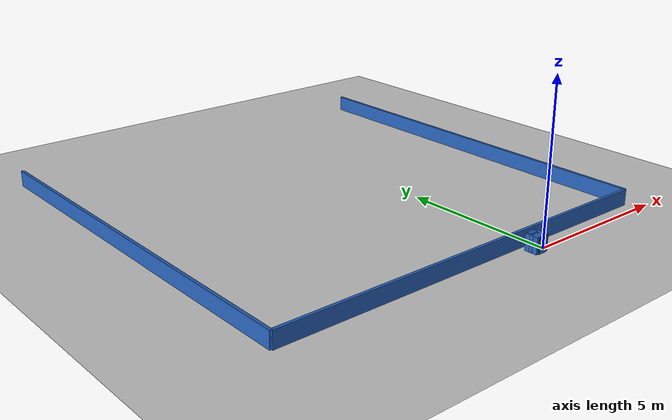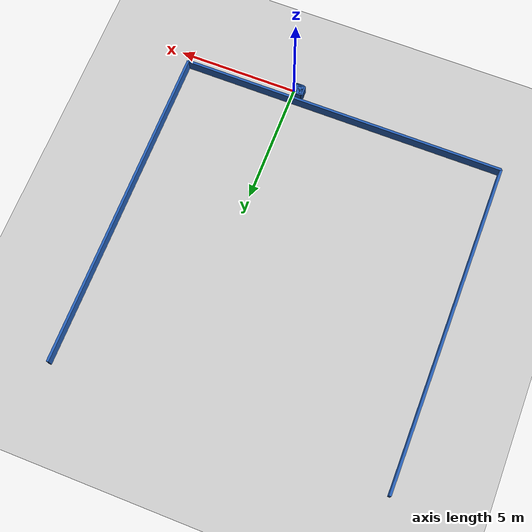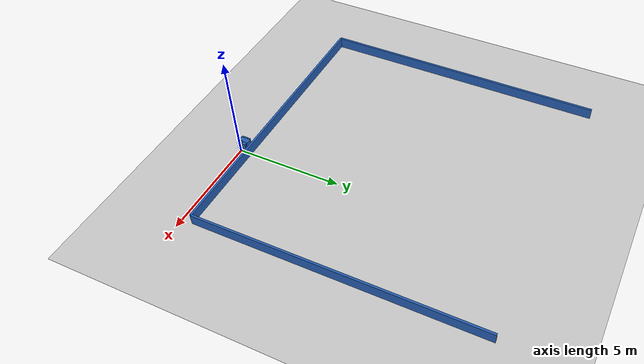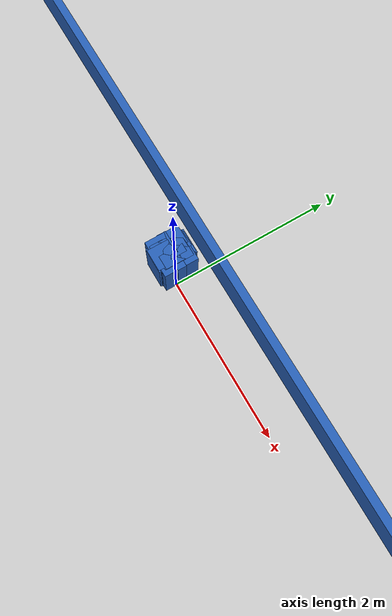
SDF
<?xml version="1.0" ?>
    <sdf version="1.5">
      <world name="default">
        <!-- A global light source -->
        <include>
          <uri>model://sun</uri>
        </include>
        <!-- A ground plane -->
        <include>
          <uri>model://ground_plane</uri>
        </include>

    <model name='libopen_space_final_T2B_119_99'>
      <static>1</static>
      <pose frame=''>-0.225000 0.075000 0.000000 0.000000 0.000000 0.000000</pose>
      <link name='link'>
        <inertial>
          <mass>1</mass>
          <inertia>
            <ixx>0.145833</ixx>
            <ixy>0</ixy>
            <ixz>0</ixz>
            <iyy>0.145833</iyy>
            <iyz>0</iyz>
            <izz>0.125</izz>
          </inertia>
        </inertial>
        <collision name='collision'>
          <geometry>
            <box>
              <size>0.33 0.44 1</size>
            </box>
          </geometry>
          <max_contacts>10</max_contacts>
          <surface>
            <contact>
              <ode/>
            </contact>
            <bounce/>
            <friction>
              <torsional>
                <ode/>
              </torsional>
              <ode/>
            </friction>
          </surface>
        </collision>
        <visual name='visual'>
          <geometry>
            <box>
              <size>0.33 0.44 1</size>
            </box>
          </geometry>
	    <material>
              <ambient>0.152000 0.379000 0.720000 1</ambient>
	      <diffuse>0.152000 0.379000 0.720000 1</diffuse>
          </material>
          <material>
            <script>
              <name>Gazebo/Grey</name>
              <uri>file://media/materials/scripts/gazebo.material</uri>
            </script>
          </material>
        </visual>
        <self_collide>0</self_collide>
        <kinematic>0</kinematic>
        <gravity>1</gravity>
      </link>
      <plugin name='libopen_space_final_T2B_119_99' filename='libopen_space_final_T2B_119_99.so'/>
    </model>

    <model name='libopen_space_final_T2B_90_76'>
      <static>1</static>
      <pose frame=''>-0.225000 0.075000 0.000000 0.000000 0.000000 0.000000</pose>
      <link name='link'>
        <inertial>
          <mass>1</mass>
          <inertia>
            <ixx>0.145833</ixx>
            <ixy>0</ixy>
            <ixz>0</ixz>
            <iyy>0.145833</iyy>
            <iyz>0</iyz>
            <izz>0.125</izz>
          </inertia>
        </inertial>
        <collision name='collision'>
          <geometry>
            <box>
              <size>0.46 0.42 1</size>
            </box>
          </geometry>
          <max_contacts>10</max_contacts>
          <surface>
            <contact>
              <ode/>
            </contact>
            <bounce/>
            <friction>
              <torsional>
                <ode/>
              </torsional>
              <ode/>
            </friction>
          </surface>
        </collision>
        <visual name='visual'>
          <geometry>
            <box>
              <size>0.46 0.42 1</size>
            </box>
          </geometry>
	    <material>
              <ambient>0.152000 0.379000 0.720000 1</ambient>
	      <diffuse>0.152000 0.379000 0.720000 1</diffuse>
          </material>
          <material>
            <script>
              <name>Gazebo/Grey</name>
              <uri>file://media/materials/scripts/gazebo.material</uri>
            </script>
          </material>
        </visual>
        <self_collide>0</self_collide>
        <kinematic>0</kinematic>
        <gravity>1</gravity>
      </link>
      <plugin name='libopen_space_final_T2B_90_76' filename='libopen_space_final_T2B_90_76.so'/>
    </model>

    <model name='libopen_space_final_T2B_83_66'>
      <static>1</static>
      <pose frame=''>-0.225000 0.075000 0.000000 0.000000 0.000000 0.000000</pose>
      <link name='link'>
        <inertial>
          <mass>1</mass>
          <inertia>
            <ixx>0.145833</ixx>
            <ixy>0</ixy>
            <ixz>0</ixz>
            <iyy>0.145833</iyy>
            <iyz>0</iyz>
            <izz>0.125</izz>
          </inertia>
        </inertial>
        <collision name='collision'>
          <geometry>
            <box>
              <size>0.32 0.37 1</size>
            </box>
          </geometry>
          <max_contacts>10</max_contacts>
          <surface>
            <contact>
              <ode/>
            </contact>
            <bounce/>
            <friction>
              <torsional>
                <ode/>
              </torsional>
              <ode/>
            </friction>
          </surface>
        </collision>
        <visual name='visual'>
          <geometry>
            <box>
              <size>0.32 0.37 1</size>
            </box>
          </geometry>
	    <material>
              <ambient>0.152000 0.379000 0.720000 1</ambient>
	      <diffuse>0.152000 0.379000 0.720000 1</diffuse>
          </material>
          <material>
            <script>
              <name>Gazebo/Grey</name>
              <uri>file://media/materials/scripts/gazebo.material</uri>
            </script>
          </material>
        </visual>
        <self_collide>0</self_collide>
        <kinematic>0</kinematic>
        <gravity>1</gravity>
      </link>
      <plugin name='libopen_space_final_T2B_83_66' filename='libopen_space_final_T2B_83_66.so'/>
    </model>

    <model name='libopen_space_final_T2B_73_39'>
      <static>1</static>
      <pose frame=''>-0.225000 0.075000 0.000000 0.000000 0.000000 0.000000</pose>
      <link name='link'>
        <inertial>
          <mass>1</mass>
          <inertia>
            <ixx>0.145833</ixx>
            <ixy>0</ixy>
            <ixz>0</ixz>
            <iyy>0.145833</iyy>
            <iyz>0</iyz>
            <izz>0.125</izz>
          </inertia>
        </inertial>
        <collision name='collision'>
          <geometry>
            <box>
              <size>0.33 0.38 1</size>
            </box>
          </geometry>
          <max_contacts>10</max_contacts>
          <surface>
            <contact>
              <ode/>
            </contact>
            <bounce/>
            <friction>
              <torsional>
                <ode/>
              </torsional>
              <ode/>
            </friction>
          </surface>
        </collision>
        <visual name='visual'>
          <geometry>
            <box>
              <size>0.33 0.38 1</size>
            </box>
          </geometry>
	    <material>
              <ambient>0.152000 0.379000 0.720000 1</ambient>
	      <diffuse>0.152000 0.379000 0.720000 1</diffuse>
          </material>
          <material>
            <script>
              <name>Gazebo/Grey</name>
              <uri>file://media/materials/scripts/gazebo.material</uri>
            </script>
          </material>
        </visual>
        <self_collide>0</self_collide>
        <kinematic>0</kinematic>
        <gravity>1</gravity>
      </link>
      <plugin name='libopen_space_final_T2B_73_39' filename='libopen_space_final_T2B_73_39.so'/>
    </model>

    <model name='libopen_space_final_T2B_87_56'>
      <static>1</static>
      <pose frame=''>-0.225000 0.075000 0.000000 0.000000 0.000000 0.000000</pose>
      <link name='link'>
        <inertial>
          <mass>1</mass>
          <inertia>
            <ixx>0.145833</ixx>
            <ixy>0</ixy>
            <ixz>0</ixz>
            <iyy>0.145833</iyy>
            <iyz>0</iyz>
            <izz>0.125</izz>
          </inertia>
        </inertial>
        <collision name='collision'>
          <geometry>
            <box>
              <size>0.11 0.45 1</size>
            </box>
          </geometry>
          <max_contacts>10</max_contacts>
          <surface>
            <contact>
              <ode/>
            </contact>
            <bounce/>
            <friction>
              <torsional>
                <ode/>
              </torsional>
              <ode/>
            </friction>
          </surface>
        </collision>
        <visual name='visual'>
          <geometry>
            <box>
              <size>0.11 0.45 1</size>
            </box>
          </geometry>
	    <material>
              <ambient>0.152000 0.379000 0.720000 1</ambient>
	      <diffuse>0.152000 0.379000 0.720000 1</diffuse>
          </material>
          <material>
            <script>
              <name>Gazebo/Grey</name>
              <uri>file://media/materials/scripts/gazebo.material</uri>
            </script>
          </material>
        </visual>
        <self_collide>0</self_collide>
        <kinematic>0</kinematic>
        <gravity>1</gravity>
      </link>
      <plugin name='libopen_space_final_T2B_87_56' filename='libopen_space_final_T2B_87_56.so'/>
    </model>

    <model name='libopen_space_final_T2B_115_16'>
      <static>1</static>
      <pose frame=''>-0.225000 0.075000 0.000000 0.000000 0.000000 0.000000</pose>
      <link name='link'>
        <inertial>
          <mass>1</mass>
          <inertia>
            <ixx>0.145833</ixx>
            <ixy>0</ixy>
            <ixz>0</ixz>
            <iyy>0.145833</iyy>
            <iyz>0</iyz>
            <izz>0.125</izz>
          </inertia>
        </inertial>
        <collision name='collision'>
          <geometry>
            <box>
              <size>0.47 0.11 1</size>
            </box>
          </geometry>
          <max_contacts>10</max_contacts>
          <surface>
            <contact>
              <ode/>
            </contact>
            <bounce/>
            <friction>
              <torsional>
                <ode/>
              </torsional>
              <ode/>
            </friction>
          </surface>
        </collision>
        <visual name='visual'>
          <geometry>
            <box>
              <size>0.47 0.11 1</size>
            </box>
          </geometry>
	    <material>
              <ambient>0.152000 0.379000 0.720000 1</ambient>
	      <diffuse>0.152000 0.379000 0.720000 1</diffuse>
          </material>
          <material>
            <script>
              <name>Gazebo/Grey</name>
              <uri>file://media/materials/scripts/gazebo.material</uri>
            </script>
          </material>
        </visual>
        <self_collide>0</self_collide>
        <kinematic>0</kinematic>
        <gravity>1</gravity>
      </link>
      <plugin name='libopen_space_final_T2B_115_16' filename='libopen_space_final_T2B_115_16.so'/>
    </model>

    <model name='libopen_space_final_T2B_55_44'>
      <static>1</static>
      <pose frame=''>-0.225000 0.075000 0.000000 0.000000 0.000000 0.000000</pose>
      <link name='link'>
        <inertial>
          <mass>1</mass>
          <inertia>
            <ixx>0.145833</ixx>
            <ixy>0</ixy>
            <ixz>0</ixz>
            <iyy>0.145833</iyy>
            <iyz>0</iyz>
            <izz>0.125</izz>
          </inertia>
        </inertial>
        <collision name='collision'>
          <geometry>
            <box>
              <size>0.27 0.39 1</size>
            </box>
          </geometry>
          <max_contacts>10</max_contacts>
          <surface>
            <contact>
              <ode/>
            </contact>
            <bounce/>
            <friction>
              <torsional>
                <ode/>
              </torsional>
              <ode/>
            </friction>
          </surface>
        </collision>
        <visual name='visual'>
          <geometry>
            <box>
              <size>0.27 0.39 1</size>
            </box>
          </geometry>
	    <material>
              <ambient>0.152000 0.379000 0.720000 1</ambient>
	      <diffuse>0.152000 0.379000 0.720000 1</diffuse>
          </material>
          <material>
            <script>
              <name>Gazebo/Grey</name>
              <uri>file://media/materials/scripts/gazebo.material</uri>
            </script>
          </material>
        </visual>
        <self_collide>0</self_collide>
        <kinematic>0</kinematic>
        <gravity>1</gravity>
      </link>
      <plugin name='libopen_space_final_T2B_55_44' filename='libopen_space_final_T2B_55_44.so'/>
    </model>

    <model name='libopen_space_final_T2B_112_81'>
      <static>1</static>
      <pose frame=''>-0.225000 0.075000 0.000000 0.000000 0.000000 0.000000</pose>
      <link name='link'>
        <inertial>
          <mass>1</mass>
          <inertia>
            <ixx>0.145833</ixx>
            <ixy>0</ixy>
            <ixz>0</ixz>
            <iyy>0.145833</iyy>
            <iyz>0</iyz>
            <izz>0.125</izz>
          </inertia>
        </inertial>
        <collision name='collision'>
          <geometry>
            <box>
              <size>0.27 0.47 1</size>
            </box>
          </geometry>
          <max_contacts>10</max_contacts>
          <surface>
            <contact>
              <ode/>
            </contact>
            <bounce/>
            <friction>
              <torsional>
                <ode/>
              </torsional>
              <ode/>
            </friction>
          </surface>
        </collision>
        <visual name='visual'>
          <geometry>
            <box>
              <size>0.27 0.47 1</size>
            </box>
          </geometry>
	    <material>
              <ambient>0.152000 0.379000 0.720000 1</ambient>
	      <diffuse>0.152000 0.379000 0.720000 1</diffuse>
          </material>
          <material>
            <script>
              <name>Gazebo/Grey</name>
              <uri>file://media/materials/scripts/gazebo.material</uri>
            </script>
          </material>
        </visual>
        <self_collide>0</self_collide>
        <kinematic>0</kinematic>
        <gravity>1</gravity>
      </link>
      <plugin name='libopen_space_final_T2B_112_81' filename='libopen_space_final_T2B_112_81.so'/>
    </model>

    <model name='libopen_space_final_T2B_94_31'>
      <static>1</static>
      <pose frame=''>-0.225000 0.075000 0.000000 0.000000 0.000000 0.000000</pose>
      <link name='link'>
        <inertial>
          <mass>1</mass>
          <inertia>
            <ixx>0.145833</ixx>
            <ixy>0</ixy>
            <ixz>0</ixz>
            <iyy>0.145833</iyy>
            <iyz>0</iyz>
            <izz>0.125</izz>
          </inertia>
        </inertial>
        <collision name='collision'>
          <geometry>
            <box>
              <size>0.32 0.31 1</size>
            </box>
          </geometry>
          <max_contacts>10</max_contacts>
          <surface>
            <contact>
              <ode/>
            </contact>
            <bounce/>
            <friction>
              <torsional>
                <ode/>
              </torsional>
              <ode/>
            </friction>
          </surface>
        </collision>
        <visual name='visual'>
          <geometry>
            <box>
              <size>0.32 0.31 1</size>
            </box>
          </geometry>
	    <material>
              <ambient>0.152000 0.379000 0.720000 1</ambient>
	      <diffuse>0.152000 0.379000 0.720000 1</diffuse>
          </material>
          <material>
            <script>
              <name>Gazebo/Grey</name>
              <uri>file://media/materials/scripts/gazebo.material</uri>
            </script>
          </material>
        </visual>
        <self_collide>0</self_collide>
        <kinematic>0</kinematic>
        <gravity>1</gravity>
      </link>
      <plugin name='libopen_space_final_T2B_94_31' filename='libopen_space_final_T2B_94_31.so'/>
    </model>

    <model name='libopen_space_final_T2B_91_57'>
      <static>1</static>
      <pose frame=''>-0.225000 0.075000 0.000000 0.000000 0.000000 0.000000</pose>
      <link name='link'>
        <inertial>
          <mass>1</mass>
          <inertia>
            <ixx>0.145833</ixx>
            <ixy>0</ixy>
            <ixz>0</ixz>
            <iyy>0.145833</iyy>
            <iyz>0</iyz>
            <izz>0.125</izz>
          </inertia>
        </inertial>
        <collision name='collision'>
          <geometry>
            <box>
              <size>0.31 0.48 1</size>
            </box>
          </geometry>
          <max_contacts>10</max_contacts>
          <surface>
            <contact>
              <ode/>
            </contact>
            <bounce/>
            <friction>
              <torsional>
                <ode/>
              </torsional>
              <ode/>
            </friction>
          </surface>
        </collision>
        <visual name='visual'>
          <geometry>
            <box>
              <size>0.31 0.48 1</size>
            </box>
          </geometry>
	    <material>
              <ambient>0.152000 0.379000 0.720000 1</ambient>
	      <diffuse>0.152000 0.379000 0.720000 1</diffuse>
          </material>
          <material>
            <script>
              <name>Gazebo/Grey</name>
              <uri>file://media/materials/scripts/gazebo.material</uri>
            </script>
          </material>
        </visual>
        <self_collide>0</self_collide>
        <kinematic>0</kinematic>
        <gravity>1</gravity>
      </link>
      <plugin name='libopen_space_final_T2B_91_57' filename='libopen_space_final_T2B_91_57.so'/>
    </model>

    <model name='libopen_space_final_T2B_114_22'>
      <static>1</static>
      <pose frame=''>-0.225000 0.075000 0.000000 0.000000 0.000000 0.000000</pose>
      <link name='link'>
        <inertial>
          <mass>1</mass>
          <inertia>
            <ixx>0.145833</ixx>
            <ixy>0</ixy>
            <ixz>0</ixz>
            <iyy>0.145833</iyy>
            <iyz>0</iyz>
            <izz>0.125</izz>
          </inertia>
        </inertial>
        <collision name='collision'>
          <geometry>
            <box>
              <size>0.17 0.29 1</size>
            </box>
          </geometry>
          <max_contacts>10</max_contacts>
          <surface>
            <contact>
              <ode/>
            </contact>
            <bounce/>
            <friction>
              <torsional>
                <ode/>
              </torsional>
              <ode/>
            </friction>
          </surface>
        </collision>
        <visual name='visual'>
          <geometry>
            <box>
              <size>0.17 0.29 1</size>
            </box>
          </geometry>
	    <material>
              <ambient>0.152000 0.379000 0.720000 1</ambient>
	      <diffuse>0.152000 0.379000 0.720000 1</diffuse>
          </material>
          <material>
            <script>
              <name>Gazebo/Grey</name>
              <uri>file://media/materials/scripts/gazebo.material</uri>
            </script>
          </material>
        </visual>
        <self_collide>0</self_collide>
        <kinematic>0</kinematic>
        <gravity>1</gravity>
      </link>
      <plugin name='libopen_space_final_T2B_114_22' filename='libopen_space_final_T2B_114_22.so'/>
    </model>

        <model name='bottom_wall'>
          <static>1</static>
          <pose frame=''>-2.25 0.5 0.000000 0.000000 0.000000 1.57079632</pose>
          <link name='link'>
            <inertial>
            <mass>1</mass>
            <inertia>
              <ixx>0.145833</ixx>
              <ixy>0</ixy>
              <ixz>0</ixz>
              <iyy>0.145833</iyy>
              <iyz>0</iyz>
              <izz>0.125</izz>
            </inertia>
            </inertial>
            <collision name='collision'>
            <geometry>
              <box>
              <size>0.1 13.5 1</size>
              </box>
            </geometry>
            <max_contacts>10</max_contacts>
            <surface>
              <contact>
              <ode/>
              </contact>
              <bounce/>
              <friction>
              <torsional>
                <ode/>
              </torsional>
              <ode/>
              </friction>
            </surface>
            </collision>
            <visual name='visual'>
            <geometry>
              <box>
              <size>0.1 13.5 1</size>
              </box>
            </geometry>
            <material>
              <ambient>0.152000 0.379000 0.720000 1</ambient>
            <diffuse>0.152000 0.379000 0.720000 1</diffuse>
            </material>
            <material>
              <script>
              <name>Gazebo/Grey</name>
              <uri>file://media/materials/scripts/gazebo.material</uri>
              </script>
            </material>
            </visual>
            <self_collide>0</self_collide>
            <kinematic>0</kinematic>
            <gravity>1</gravity>
          </link>
        </model>

        <model name='left_wall'>
          <static>1</static>
          <pose frame=''>-9 7.25 0.000000 0.000000 0.000000 0.000000</pose>
          <link name='link'>
            <inertial>
            <mass>1</mass>
            <inertia>
              <ixx>0.145833</ixx>
              <ixy>0</ixy>
              <ixz>0</ixz>
              <iyy>0.145833</iyy>
              <iyz>0</iyz>
              <izz>0.125</izz>
            </inertia>
            </inertial>
            <collision name='collision'>
            <geometry>
              <box>
              <size>0.1 13.5 1</size>
              </box>
            </geometry>
            <max_contacts>10</max_contacts>
            <surface>
              <contact>
              <ode/>
              </contact>
              <bounce/>
              <friction>
              <torsional>
                <ode/>
              </torsional>
              <ode/>
              </friction>
            </surface>
            </collision>
            <visual name='visual'>
            <geometry>
              <box>
              <size>0.1 13.5 1</size>
              </box>
            </geometry>
            <material>
              <ambient>0.152000 0.379000 0.720000 1</ambient>
            <diffuse>0.152000 0.379000 0.720000 1</diffuse>
            </material>
            <material>
              <script>
              <name>Gazebo/Grey</name>
              <uri>file://media/materials/scripts/gazebo.material</uri>
              </script>
            </material>
            </visual>
            <self_collide>0</self_collide>
            <kinematic>0</kinematic>
            <gravity>1</gravity>
          </link>
        </model>

        <model name='right_wall'>
          <static>1</static>
          <pose frame=''>4.5 7.25 0.000000 0.000000 0.000000 0.000000</pose>
          <link name='link'>
            <inertial>
            <mass>1</mass>
            <inertia>
              <ixx>0.145833</ixx>
              <ixy>0</ixy>
              <ixz>0</ixz>
              <iyy>0.145833</iyy>
              <iyz>0</iyz>
              <izz>0.125</izz>
            </inertia>
            </inertial>
            <collision name='collision'>
            <geometry>
              <box>
              <size>0.1 13.5 1</size>
              </box>
            </geometry>
            <max_contacts>10</max_contacts>
            <surface>
              <contact>
              <ode/>
              </contact>
              <bounce/>
              <friction>
              <torsional>
                <ode/>
              </torsional>
              <ode/>
              </friction>
            </surface>
            </collision>
            <visual name='visual'>
            <geometry>
              <box>
              <size>0.1 13.5 1</size>
              </box>
            </geometry>
            <material>
              <ambient>0.152000 0.379000 0.720000 1</ambient>
            <diffuse>0.152000 0.379000 0.720000 1</diffuse>
            </material>
            <material>
              <script>
              <name>Gazebo/Grey</name>
              <uri>file://media/materials/scripts/gazebo.material</uri>
              </script>
            </material>
            </visual>
            <self_collide>0</self_collide>
            <kinematic>0</kinematic>
            <gravity>1</gravity>
          </link>
        </model>

      </world>
    </sdf>"
